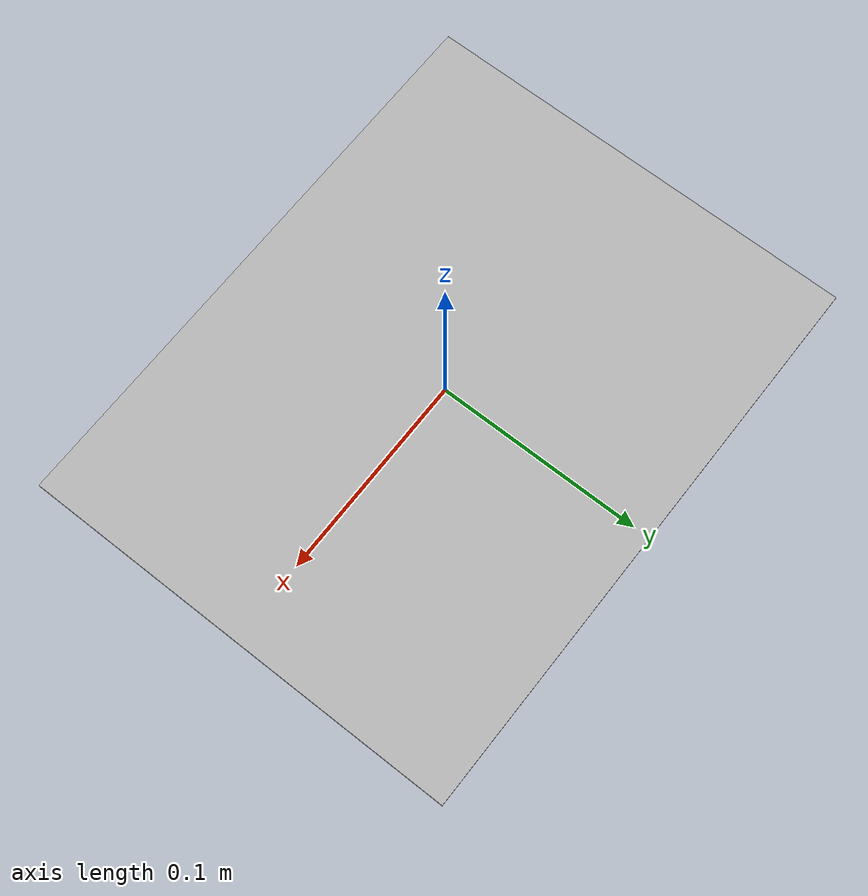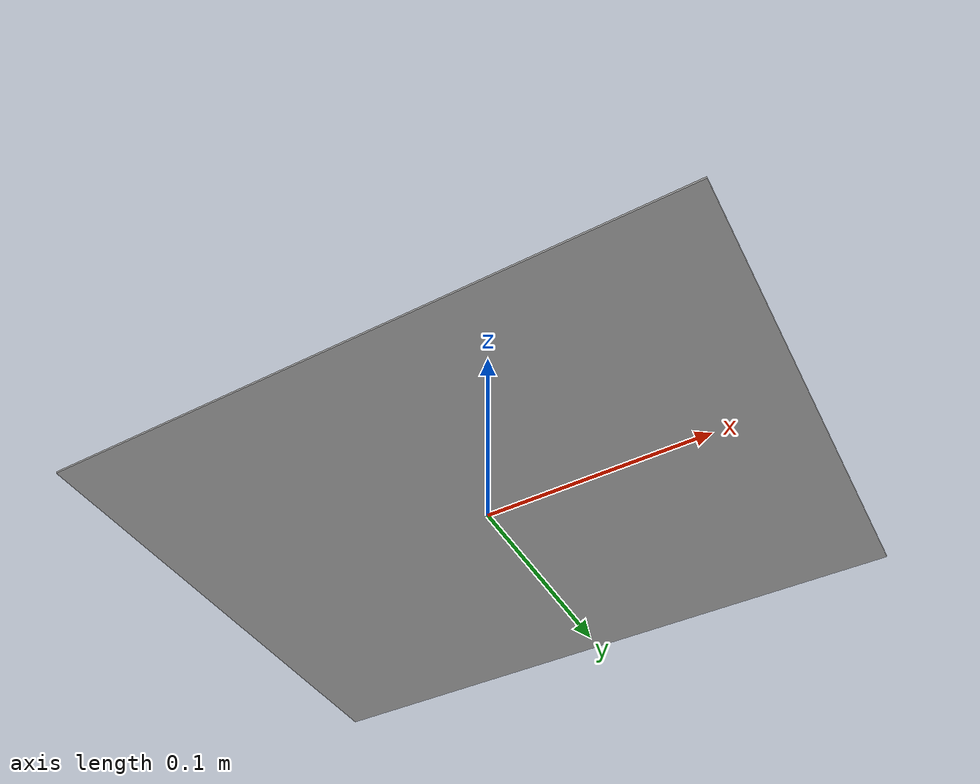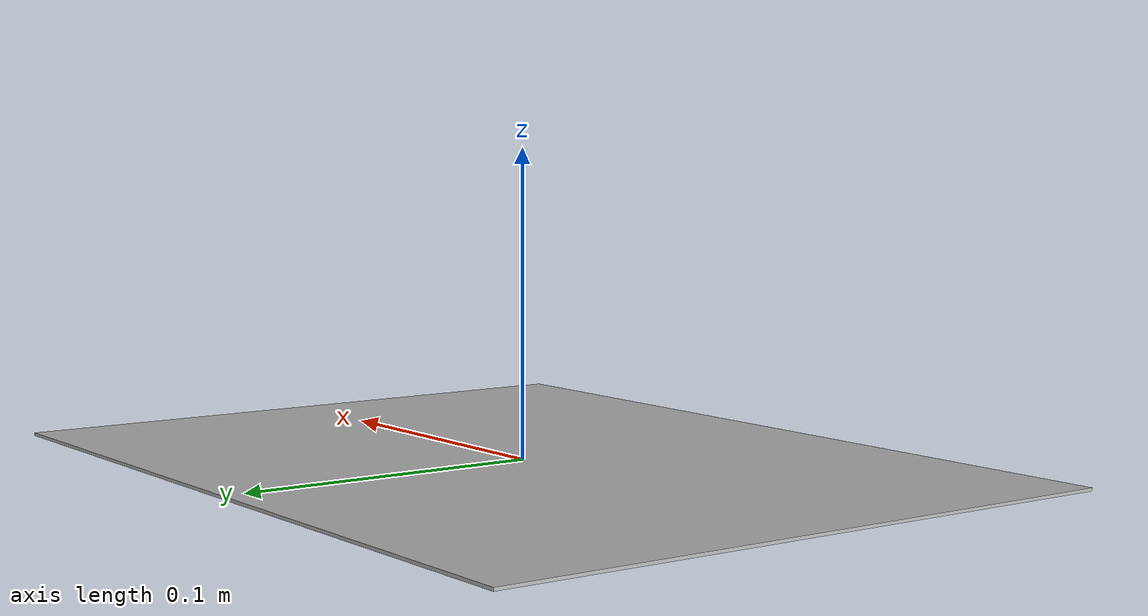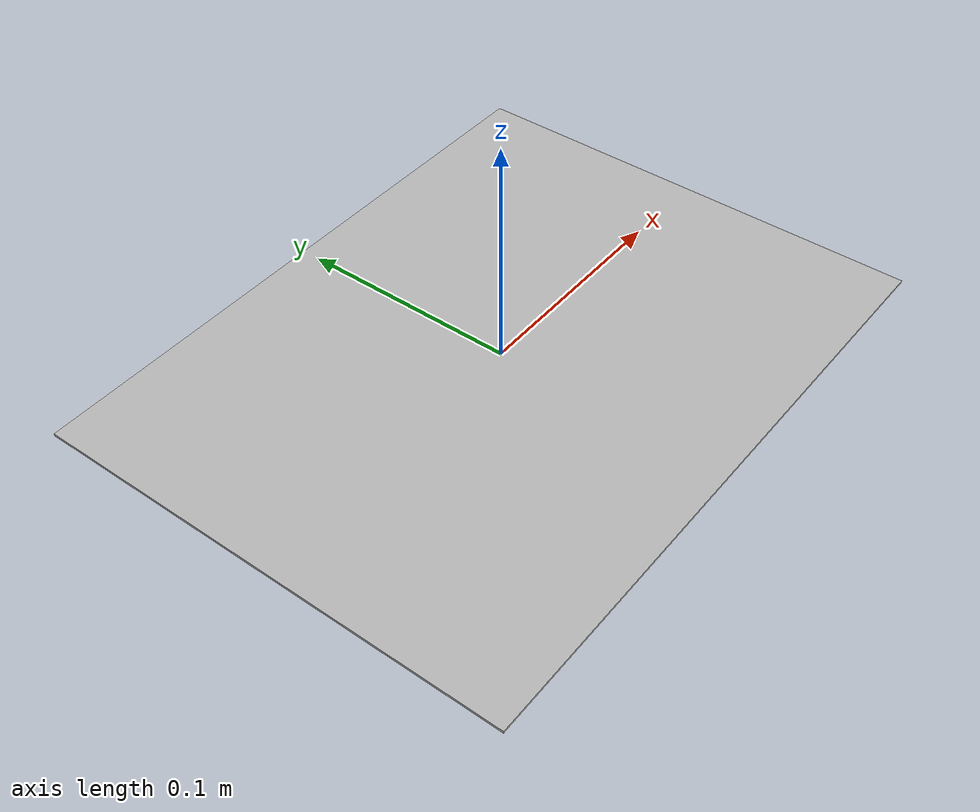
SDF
<?xml version='1.0'?>
<sdf version='1.4'>
    <model name="aruco_mip_36h12_markermap">
        <static>true</static>
        <link name='link'>

            <collision name ='collision'>
                <geometry>
                    <box>
                        <size>0.2794 0.2159 0.001</size>
                    </box>
                </geometry>
            </collision>
            <visual name='visual'>
                <geometry>
                    <box>
                        <size>0.2794 0.2159 0.001</size>
                    </box>
                </geometry>

                <material>
                    <script>
                        <uri>model://aruco_mip_36h12_markermap/materials/scripts</uri>
                        <uri>model://aruco_mip_36h12_markermap/materials/textures</uri>
                        <name>aruco_mip_36h12_markermap/Diffuse</name>
                    </script>
                </material>
            </visual>
        </link>
    </model>
</sdf>
